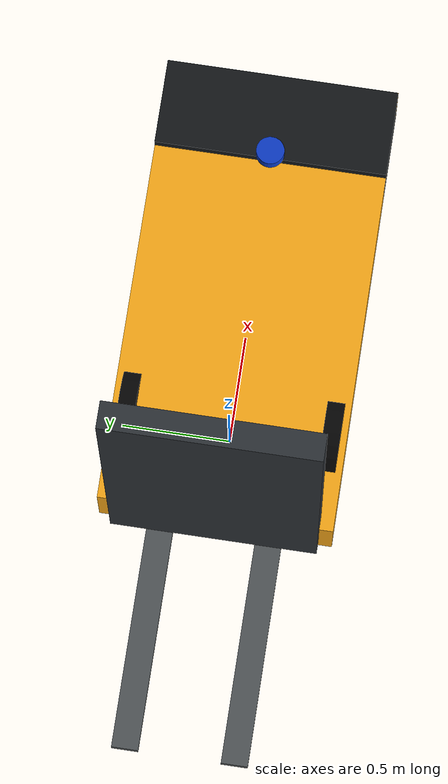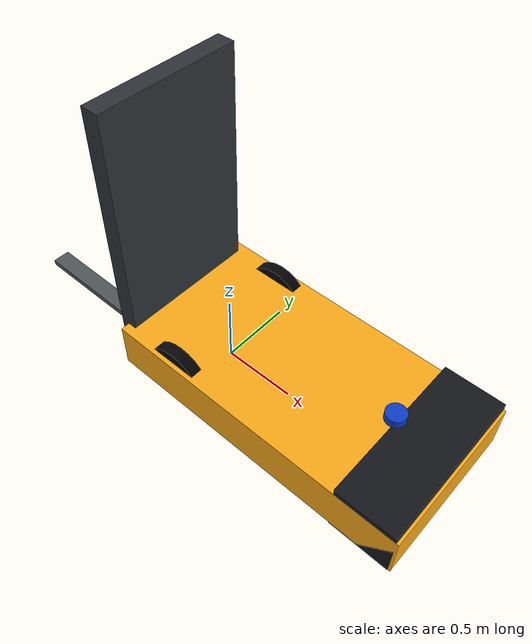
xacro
<?xml version="1.0"?>
<robot xmlns:xacro="http://www.ros.org/wiki/xacro" name="xfl201_steered">
  <xacro:arg name="gazebo_cmd_vel_topic" default="cmd_vel"/>
  <xacro:arg name="gazebo_scan_topic" default="scan"/>

  <xacro:property name="wheel_radius" value="0.225"/>
  <xacro:property name="wheel_width" value="0.08"/>
  <xacro:property name="wheel_separation" value="0.936"/>
  <xacro:property name="base_z" value="0.22"/>
  <xacro:property name="body_length" value="2.10"/>
  <xacro:property name="body_width" value="1.076"/>
  <xacro:property name="body_height" value="0.32"/>
  <xacro:property name="body_center_x" value="0.616"/>
  <xacro:property name="fork_vertical_face_x" value="-0.434"/>
  <xacro:property name="fork_length" value="1.070"/>

  <link name="base_footprint"/>

  <joint name="base_joint" type="fixed">
    <parent link="base_footprint"/>
    <child link="base_link"/>
    <origin xyz="0 0 ${base_z}" rpy="0 0 0"/>
  </joint>

  <link name="base_link">
    <inertial>
      <origin xyz="0 0 0"/>
      <mass value="28.0"/>
      <inertia ixx="1.20" ixy="0.0" ixz="0.0" iyy="3.40" iyz="0.0" izz="3.80"/>
    </inertial>
    <visual name="body_visual">
      <origin xyz="${body_center_x} 0 0" rpy="0 0 0"/>
      <geometry>
        <box size="${body_length} ${body_width} ${body_height}"/>
      </geometry>
      <material name="forklift_yellow">
        <color rgba="1.0 0.68 0.10 1.0"/>
      </material>
    </visual>
    <collision name="body_collision">
      <origin xyz="${body_center_x} 0 0" rpy="0 0 0"/>
      <geometry>
        <box size="${body_length} ${body_width} ${body_height}"/>
      </geometry>
    </collision>

    <visual name="counterweight_visual">
      <origin xyz="1.45 0 0.02" rpy="0 0 0"/>
      <geometry>
        <box size="0.40 ${body_width} 0.38"/>
      </geometry>
      <material name="dark_gray">
        <color rgba="0.08 0.09 0.10 1.0"/>
      </material>
    </visual>
    <collision name="counterweight_collision">
      <origin xyz="1.45 0 0.02" rpy="0 0 0"/>
      <geometry>
        <box size="0.40 ${body_width} 0.38"/>
      </geometry>
    </collision>

    <visual name="mast_visual">
      <origin xyz="${fork_vertical_face_x} 0 0.82" rpy="0 0 0"/>
      <geometry>
        <box size="0.12 0.95 1.80"/>
      </geometry>
      <material name="mast_gray">
        <color rgba="0.18 0.20 0.22 1.0"/>
      </material>
    </visual>
    <collision name="mast_collision">
      <origin xyz="${fork_vertical_face_x} 0 0.82" rpy="0 0 0"/>
      <geometry>
        <box size="0.12 0.95 1.80"/>
      </geometry>
    </collision>

    <visual name="fork_left_visual">
      <origin xyz="${fork_vertical_face_x - fork_length / 2.0} 0.25 -0.13" rpy="0 0 0"/>
      <geometry>
        <box size="${fork_length} 0.122 0.04"/>
      </geometry>
      <material name="fork_gray">
        <color rgba="0.32 0.34 0.35 1.0"/>
      </material>
    </visual>
    <collision name="fork_left_collision">
      <origin xyz="${fork_vertical_face_x - fork_length / 2.0} 0.25 -0.13" rpy="0 0 0"/>
      <geometry>
        <box size="${fork_length} 0.122 0.04"/>
      </geometry>
    </collision>

    <visual name="fork_right_visual">
      <origin xyz="${fork_vertical_face_x - fork_length / 2.0} -0.25 -0.13" rpy="0 0 0"/>
      <geometry>
        <box size="${fork_length} 0.122 0.04"/>
      </geometry>
      <material name="fork_gray"/>
    </visual>
    <collision name="fork_right_collision">
      <origin xyz="${fork_vertical_face_x - fork_length / 2.0} -0.25 -0.13" rpy="0 0 0"/>
      <geometry>
        <box size="${fork_length} 0.122 0.04"/>
      </geometry>
    </collision>
  </link>

  <link name="left_wheel_link">
    <inertial>
      <origin xyz="0 0 0"/>
      <mass value="2.0"/>
      <inertia ixx="0.018" ixy="0.0" ixz="0.0" iyy="0.032" iyz="0.0" izz="0.018"/>
    </inertial>
    <visual>
      <origin xyz="0 0 0" rpy="1.57079632679 0 0"/>
      <geometry>
        <cylinder radius="${wheel_radius}" length="${wheel_width}"/>
      </geometry>
      <material name="wheel_black">
        <color rgba="0.02 0.02 0.02 1.0"/>
      </material>
    </visual>
    <collision>
      <origin xyz="0 0 0" rpy="1.57079632679 0 0"/>
      <geometry>
        <cylinder radius="${wheel_radius}" length="${wheel_width}"/>
      </geometry>
    </collision>
  </link>

  <joint name="left_wheel_joint" type="continuous">
    <parent link="base_link"/>
    <child link="left_wheel_link"/>
    <origin xyz="0 ${wheel_separation / 2.0} ${wheel_radius - base_z}" rpy="0 0 0"/>
    <axis xyz="0 1 0"/>
  </joint>

  <link name="right_wheel_link">
    <inertial>
      <origin xyz="0 0 0"/>
      <mass value="2.0"/>
      <inertia ixx="0.018" ixy="0.0" ixz="0.0" iyy="0.032" iyz="0.0" izz="0.018"/>
    </inertial>
    <visual>
      <origin xyz="0 0 0" rpy="1.57079632679 0 0"/>
      <geometry>
        <cylinder radius="${wheel_radius}" length="${wheel_width}"/>
      </geometry>
      <material name="wheel_black"/>
    </visual>
    <collision>
      <origin xyz="0 0 0" rpy="1.57079632679 0 0"/>
      <geometry>
        <cylinder radius="${wheel_radius}" length="${wheel_width}"/>
      </geometry>
    </collision>
  </link>

  <joint name="right_wheel_joint" type="continuous">
    <parent link="base_link"/>
    <child link="right_wheel_link"/>
    <origin xyz="0 ${-wheel_separation / 2.0} ${wheel_radius - base_z}" rpy="0 0 0"/>
    <axis xyz="0 1 0"/>
  </joint>

  <link name="steer_wheel_link">
    <inertial>
      <origin xyz="0 0 0"/>
      <mass value="0.4"/>
      <inertia ixx="0.001" ixy="0.0" ixz="0.0" iyy="0.001" iyz="0.0" izz="0.001"/>
    </inertial>
    <visual>
      <geometry>
        <sphere radius="0.07"/>
      </geometry>
      <material name="caster_dark">
        <color rgba="0.05 0.05 0.05 1.0"/>
      </material>
    </visual>
    <collision>
      <geometry>
        <sphere radius="0.07"/>
      </geometry>
    </collision>
  </link>

  <joint name="steer_wheel_joint" type="fixed">
    <parent link="base_link"/>
    <child link="steer_wheel_link"/>
    <origin xyz="1.47 0 -0.15" rpy="0 0 0"/>
  </joint>

  <link name="base_scan">
    <inertial>
      <origin xyz="0 0 0"/>
      <mass value="0.2"/>
      <inertia ixx="0.001" ixy="0.0" ixz="0.0" iyy="0.001" iyz="0.0" izz="0.001"/>
    </inertial>
    <visual>
      <geometry>
        <cylinder radius="0.065" length="0.055"/>
      </geometry>
      <material name="laser_blue">
        <color rgba="0.05 0.24 0.80 1.0"/>
      </material>
    </visual>
    <collision>
      <geometry>
        <cylinder radius="0.065" length="0.055"/>
      </geometry>
    </collision>
  </link>

  <joint name="base_scan_joint" type="fixed">
    <parent link="base_link"/>
    <child link="base_scan"/>
    <origin xyz="1.25 0 0.30" rpy="0 0 0"/>
  </joint>

  <gazebo reference="base_link">
    <material>Gazebo/Yellow</material>
  </gazebo>

  <gazebo reference="left_wheel_link">
    <material>Gazebo/Black</material>
    <mu1>1.0</mu1>
    <mu2>1.0</mu2>
  </gazebo>

  <gazebo reference="right_wheel_link">
    <material>Gazebo/Black</material>
    <mu1>1.0</mu1>
    <mu2>1.0</mu2>
  </gazebo>

  <gazebo reference="steer_wheel_link">
    <material>Gazebo/Black</material>
    <mu1>0.01</mu1>
    <mu2>0.01</mu2>
  </gazebo>

  <gazebo reference="base_scan">
    <sensor name="forklift_laser" type="ray">
      <always_on>true</always_on>
      <visualize>true</visualize>
      <update_rate>10</update_rate>
      <ray>
        <scan>
          <horizontal>
            <samples>720</samples>
            <resolution>1</resolution>
            <min_angle>-3.14159</min_angle>
            <max_angle>3.14159</max_angle>
          </horizontal>
        </scan>
        <range>
          <min>0.12</min>
          <max>8.0</max>
          <resolution>0.01</resolution>
        </range>
        <noise>
          <type>gaussian</type>
          <mean>0.0</mean>
          <stddev>0.01</stddev>
        </noise>
      </ray>
      <plugin name="forklift_laserscan" filename="libgazebo_ros_ray_sensor.so">
        <ros>
          <remapping>~/out:=$(arg gazebo_scan_topic)</remapping>
        </ros>
        <output_type>sensor_msgs/LaserScan</output_type>
        <frame_name>base_scan</frame_name>
      </plugin>
    </sensor>
  </gazebo>

</robot>
